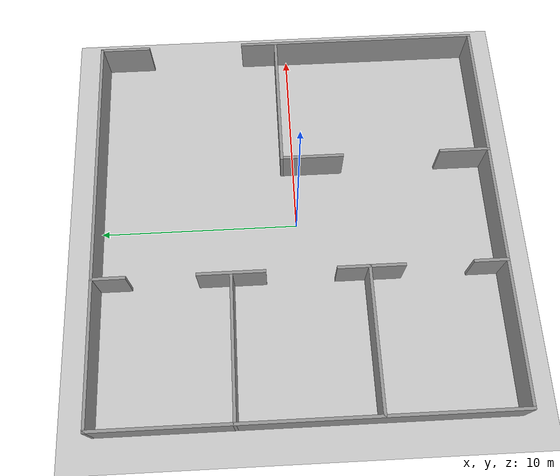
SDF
<sdf version="1.6">
 <world name="default">
  <light name="sun" type="directional">
   <pose>0 0 10 0 -0 0</pose>
   <diffuse>0.8 0.8 0.8 1</diffuse>
   <specular>0.2 0.2 0.2 1</specular>
   <attenuation>
    <range>1000</range>
    <constant>0.9</constant>
    <linear>0.01</linear>
    <quadratic>0.001</quadratic>
   </attenuation>
   <direction>-0.5 0.1 -0.9</direction>
  </light>
  <model name="ground_plane">
   <static>1</static>
   <link name="link">
    <collision name="collision">
     <geometry><plane><normal>0 0 1</normal><size>100 100</size></plane></geometry>
     <surface>
      <contact><collide_bitmask>65535</collide_bitmask></contact>
      <friction><ode><mu>100</mu><mu2>50</mu2></ode></friction>
     </surface>
    </collision>
    <visual name="visual">
     <cast_shadows>0</cast_shadows>
     <geometry><plane><normal>0 0 1</normal><size>100 100</size></plane></geometry>
     <material>
      <script><uri>file://media/materials/scripts/gazebo.material</uri><name>Gazebo/Grey</name></script>
     </material>
    </visual>
   </link>
  </model>
  <gravity>0 0 -9.8</gravity>
  <magnetic_field>6e-06 2.3e-05 -4.2e-05</magnetic_field>
  <atmosphere type="adiabatic"/>
  <physics name="default_physics" default="0" type="ode">
   <max_step_size>0.001</max_step_size>
   <real_time_factor>1</real_time_factor>
   <real_time_update_rate>1000</real_time_update_rate>
  </physics>
  <scene><ambient>0.4 0.4 0.4 1</ambient><background>0.7 0.7 0.7 1</background><shadows>1</shadows></scene>
  <audio><device>default</device></audio>
  <spherical_coordinates>
   <surface_model>EARTH_WGS84</surface_model>
   <latitude_deg>0</latitude_deg>
   <longitude_deg>0</longitude_deg>
   <elevation>0</elevation>
   <heading_deg>0</heading_deg>
  </spherical_coordinates>
  <model name="add_door_wall_0">
   <pose>10 0 0 0 -0 0</pose>
   <link name="Wall_9">
    <pose>0 0 0 0 -0 -1.5708</pose>
    <visual name="Wall_9_Visual_0">
     <pose>-8.75634 0 1 0 -0 0</pose>
     <geometry><box><size>2.63732 0.15 2</size></box></geometry>
     <material>
      <script><uri>file://media/materials/scripts/gazebo.material</uri><name>Gazebo/Grey</name></script>
      <ambient>1 1 1 1</ambient>
     </material>
     <meta><layer>0</layer></meta>
    </visual>
    <collision name="Wall_9_Collision_0">
     <geometry><box><size>2.63732 0.15 2</size></box></geometry>
     <pose>-8.75634 0 1 0 -0 0</pose>
    </collision>
    <visual name="Wall_9_Visual_1">
     <pose>3.80616 0 1 0 -0 0</pose>
     <geometry><box><size>12.5377 0.15 2</size></box></geometry>
     <material>
      <script><uri>file://media/materials/scripts/gazebo.material</uri><name>Gazebo/Grey</name></script>
      <ambient>1 1 1 1</ambient>
     </material>
     <meta><layer>0</layer></meta>
    </visual>
    <collision name="Wall_9_Collision_1">
     <geometry><box><size>12.5377 0.15 2</size></box></geometry>
     <pose>3.80616 0 1 0 -0 0</pose>
    </collision>
   </link>
   <static>1</static>
  </model>
  <model name="final_wall">
   <pose>1e-05 8.4e-05 0 0 -0 0</pose>
   <link name="Wall_11">
    <collision name="Wall_11_Collision">
     <geometry><box><size>7.15 0.15 2</size></box></geometry>
     <pose>0 0 1 0 -0 0</pose>
    </collision>
    <visual name="Wall_11_Visual">
     <pose>0 0 1 0 -0 0</pose>
     <geometry><box><size>7.15 0.15 2</size></box></geometry>
     <material>
      <script><uri>file://media/materials/scripts/gazebo.material</uri><name>Gazebo/Grey</name></script>
      <ambient>1 1 1 1</ambient>
     </material>
     <meta><layer>0</layer></meta>
    </visual>
    <pose>-6.5 -3.333 0 0 -0 0</pose>
   </link>
   <link name="Wall_15">
    <collision name="Wall_15_Collision">
     <geometry><box><size>7.15 0.15 2</size></box></geometry>
     <pose>0 0 1 0 -0 0</pose>
    </collision>
    <visual name="Wall_15_Visual">
     <pose>0 0 1 0 -0 0</pose>
     <geometry><box><size>7.15 0.15 2</size></box></geometry>
     <material>
      <script><uri>file://media/materials/scripts/gazebo.material</uri><name>Gazebo/Grey</name></script>
      <ambient>1 1 1 1</ambient>
     </material>
     <meta><layer>0</layer></meta>
    </visual>
    <pose>6.5 0.6 0 0 -0 3.14159</pose>
   </link>
   <link name="Wall_17">
    <pose>3 -4.7 0 0 -0 -1.5708</pose>
    <visual name="Wall_17_Visual_0">
     <pose>-3.76068 0 1 0 -0 0</pose>
     <geometry><box><size>3.22865 0.15 2</size></box></geometry>
     <material>
      <script><uri>file://media/materials/scripts/gazebo.material</uri><name>Gazebo/Grey</name></script>
      <ambient>1 1 1 1</ambient>
     </material>
     <meta><layer>0</layer></meta>
    </visual>
    <collision name="Wall_17_Collision_0">
     <geometry><box><size>3.22865 0.15 2</size></box></geometry>
     <pose>-3.76068 0 1 0 -0 0</pose>
    </collision>
    <visual name="Wall_17_Visual_1">
     <pose>4.08171 0 1 0 -0 0</pose>
     <geometry><box><size>2.58657 0.15 2</size></box></geometry>
     <material>
      <script><uri>file://media/materials/scripts/gazebo.material</uri><name>Gazebo/Grey</name></script>
      <ambient>1 1 1 1</ambient>
     </material>
     <meta><layer>0</layer></meta>
    </visual>
    <collision name="Wall_17_Collision_1">
     <geometry><box><size>2.58657 0.15 2</size></box></geometry>
     <pose>4.08171 0 1 0 -0 0</pose>
    </collision>
   </link>
   <link name="Wall_3">
    <collision name="Wall_3_Collision">
     <geometry><box><size>20.15 0.15 2</size></box></geometry>
     <pose>0 0 1 0 -0 0</pose>
    </collision>
    <visual name="Wall_3_Visual">
     <pose>0 0 1 0 -0 0</pose>
     <geometry><box><size>20.15 0.15 2</size></box></geometry>
     <material>
      <script><uri>file://media/materials/scripts/gazebo.material</uri><name>Gazebo/Grey</name></script>
      <ambient>1 1 1 1</ambient>
     </material>
     <meta><layer>0</layer></meta>
    </visual>
    <pose>0 10 0 0 -0 0</pose>
   </link>
   <link name="Wall_5">
    <collision name="Wall_5_Collision">
     <geometry><box><size>20.15 0.15 2</size></box></geometry>
     <pose>0 0 1 0 -0 0</pose>
    </collision>
    <visual name="Wall_5_Visual">
     <pose>0 0 1 0 -0 0</pose>
     <geometry><box><size>20.15 0.15 2</size></box></geometry>
     <material>
      <script><uri>file://media/materials/scripts/gazebo.material</uri><name>Gazebo/Grey</name></script>
      <ambient>1 1 1 1</ambient>
     </material>
     <meta><layer>0</layer></meta>
    </visual>
    <pose>-10 0 0 0 -0 -1.5708</pose>
   </link>
   <link name="Wall_7">
    <pose>-3 0 0 0 -0 -1.5708</pose>
    <visual name="Wall_7_Visual_0">
     <pose>-9.21116 0 1 0 -0 0</pose>
     <geometry><box><size>1.72769 0.15 2</size></box></geometry>
     <material>
      <script><uri>file://media/materials/scripts/gazebo.material</uri><name>Gazebo/Grey</name></script>
      <ambient>1 1 1 1</ambient>
     </material>
     <meta><layer>0</layer></meta>
    </visual>
    <collision name="Wall_7_Collision_0">
     <geometry><box><size>1.72769 0.15 2</size></box></geometry>
     <pose>-9.21116 0 1 0 -0 0</pose>
    </collision>
    <visual name="Wall_7_Visual_1">
     <pose>-3.33151 0 1 0 -0 0</pose>
     <geometry><box><size>3.36274 0.15 2</size></box></geometry>
     <material>
      <script><uri>file://media/materials/scripts/gazebo.material</uri><name>Gazebo/Grey</name></script>
      <ambient>1 1 1 1</ambient>
     </material>
     <meta><layer>0</layer></meta>
    </visual>
    <collision name="Wall_7_Collision_1">
     <geometry><box><size>3.36274 0.15 2</size></box></geometry>
     <pose>-3.33151 0 1 0 -0 0</pose>
    </collision>
    <visual name="Wall_7_Visual_2">
     <pose>3.42546 0 1 0 -0 0</pose>
     <geometry><box><size>3.3352 0.15 2</size></box></geometry>
     <material>
      <script><uri>file://media/materials/scripts/gazebo.material</uri><name>Gazebo/Grey</name></script>
      <ambient>1 1 1 1</ambient>
     </material>
     <meta><layer>0</layer></meta>
    </visual>
    <collision name="Wall_7_Collision_2">
     <geometry><box><size>3.3352 0.15 2</size></box></geometry>
     <pose>3.42546 0 1 0 -0 0</pose>
    </collision>
    <visual name="Wall_7_Visual_3">
     <pose>9.21253 0 1 0 -0 0</pose>
     <geometry><box><size>1.72494 0.15 2</size></box></geometry>
     <material>
      <script><uri>file://media/materials/scripts/gazebo.material</uri><name>Gazebo/Grey</name></script>
      <ambient>1 1 1 1</ambient>
     </material>
     <meta><layer>0</layer></meta>
    </visual>
    <collision name="Wall_7_Collision_3">
     <geometry><box><size>1.72494 0.15 2</size></box></geometry>
     <pose>9.21253 0 1 0 -0 0</pose>
    </collision>
   </link>
   <link name="Wall_9">
    <collision name="Wall_9_Collision">
     <geometry><box><size>7.15 0.15 2</size></box></geometry>
     <pose>0 0 1 0 -0 0</pose>
    </collision>
    <visual name="Wall_9_Visual">
     <pose>0 0 1 0 -0 0</pose>
     <geometry><box><size>7.15 0.15 2</size></box></geometry>
     <material>
      <script><uri>file://media/materials/scripts/gazebo.material</uri><name>Gazebo/Grey</name></script>
      <ambient>1 1 1 1</ambient>
     </material>
     <meta><layer>0</layer></meta>
    </visual>
    <pose>-6.5 3.333 0 0 -0 0</pose>
   </link>
   <static>1</static>
  </model>
  <model name="add_wall">
   <pose>0 -10 0 0 -0 0</pose>
   <link name="Wall_11">
    <collision name="Wall_11_Collision">
     <geometry><box><size>20.15 0.15 2</size></box></geometry>
     <pose>0 0 1 0 -0 0</pose>
    </collision>
    <visual name="Wall_11_Visual">
     <pose>0 0 1 0 -0 0</pose>
     <geometry><box><size>20.15 0.15 2</size></box></geometry>
     <material>
      <script><uri>file://media/materials/scripts/gazebo.material</uri><name>Gazebo/Grey</name></script>
      <ambient>1 1 1 1</ambient>
     </material>
     <meta><layer>0</layer></meta>
    </visual>
    <pose>0 0 0 0 -0 3.14159</pose>
   </link>
   <static>1</static>
  </model>
 </world>
</sdf>
